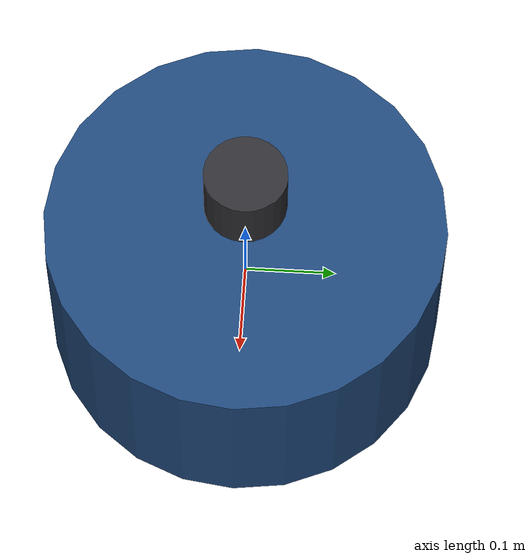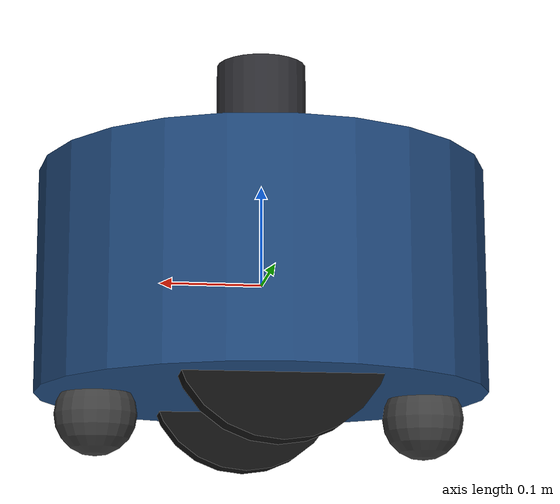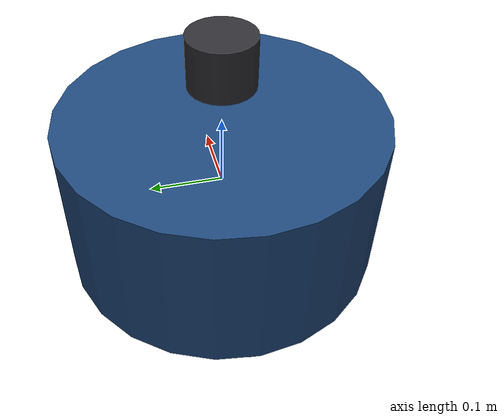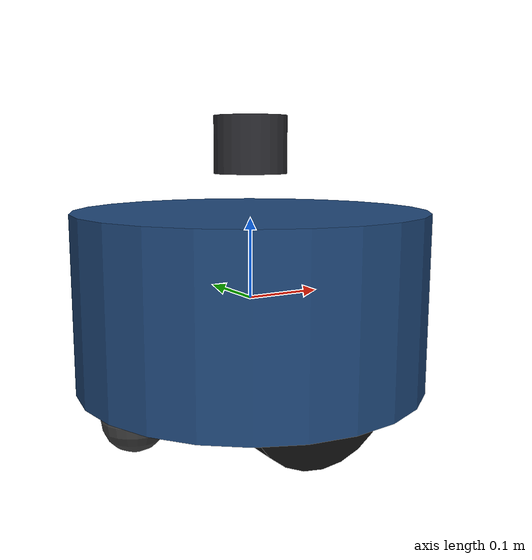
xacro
<?xml version="1.0"?>
<robot name="indoor_mobile_base" xmlns:xacro="http://www.ros.org/wiki/xacro">

  <link name="base_link">
    <inertial>
      <mass value="12.0"/><origin xyz="0 0 0"/>
      <inertia ixx="0.185" ixy="0" ixz="0" iyy="0.185" iyz="0" izz="0.290"/>
    </inertial>
    <visual><origin xyz="0 0 0"/><geometry><cylinder radius="0.22" length="0.22"/></geometry>
      <material name="body_blue"><color rgba="0.12 0.28 0.48 1"/></material></visual>
    <collision><geometry><cylinder radius="0.22" length="0.22"/></geometry></collision>
  </link>

  <link name="left_wheel_link">
    <inertial><mass value="0.6"/><inertia ixx="0.0015" ixy="0" ixz="0" iyy="0.003" iyz="0" izz="0.0015"/></inertial>
    <visual><origin rpy="1.57079632679 0 0"/><geometry><cylinder radius="0.10" length="0.04"/></geometry>
      <material name="rubber"><color rgba="0.06 0.06 0.06 1"/></material></visual>
    <collision><origin rpy="1.57079632679 0 0"/><geometry><cylinder radius="0.10" length="0.04"/></geometry></collision>
  </link>
  <joint name="left_wheel_joint" type="continuous">
    <parent link="base_link"/><child link="left_wheel_link"/><origin xyz="0 0.14 -0.07"/><axis xyz="0 1 0"/>
    <limit effort="8" velocity="4"/><dynamics damping="0.05" friction="0.02"/>
  </joint>

  <link name="right_wheel_link">
    <inertial><mass value="0.6"/><inertia ixx="0.0015" ixy="0" ixz="0" iyy="0.003" iyz="0" izz="0.0015"/></inertial>
    <visual><origin rpy="1.57079632679 0 0"/><geometry><cylinder radius="0.10" length="0.04"/></geometry>
      <material name="rubber"/></visual>
    <collision><origin rpy="1.57079632679 0 0"/><geometry><cylinder radius="0.10" length="0.04"/></geometry></collision>
  </link>
  <joint name="right_wheel_joint" type="continuous">
    <parent link="base_link"/><child link="right_wheel_link"/><origin xyz="0 -0.14 -0.07"/><axis xyz="0 1 0"/>
    <limit effort="8" velocity="4"/><dynamics damping="0.05" friction="0.02"/>
  </joint>

  <xacro:macro name="caster" params="side x">
    <link name="${side}_caster_link">
      <inertial><mass value="0.15"/><inertia ixx="0.0001" ixy="0" ixz="0" iyy="0.0001" iyz="0" izz="0.0001"/></inertial>
      <visual><geometry><sphere radius="0.04"/></geometry><material name="caster"><color rgba="0.25 0.25 0.25 1"/></material></visual>
      <collision><geometry><sphere radius="0.04"/></geometry></collision>
    </link>
    <joint name="${side}_caster_fixed_joint" type="fixed">
      <parent link="base_link"/><child link="${side}_caster_link"/><origin xyz="${x} 0 -0.13"/>
    </joint>
    <gazebo reference="${side}_caster_link"><mu1>0.05</mu1><mu2>0.05</mu2><kp>100000</kp><kd>1</kd></gazebo>
  </xacro:macro>
  <xacro:caster side="front" x="0.16"/>
  <xacro:caster side="rear" x="-0.16"/>

  <link name="imu_link">
    <inertial><mass value="0.02"/><inertia ixx="0.00001" ixy="0" ixz="0" iyy="0.00001" iyz="0" izz="0.00001"/></inertial>
    <visual><geometry><box size="0.04 0.04 0.02"/></geometry><material name="imu_case"><color rgba="0.2 0.8 0.2 1"/></material></visual>
  </link>
  <joint name="imu_mount_joint" type="fixed"><parent link="base_link"/><child link="imu_link"/><origin xyz="0 0 0.07"/></joint>

  <link name="livox_frame">
    <inertial><mass value="0.18"/><inertia ixx="0.00018" ixy="0" ixz="0" iyy="0.00018" iyz="0" izz="0.00018"/></inertial>
    <visual><geometry><cylinder radius="0.045" length="0.07"/></geometry><material name="lidar_case"><color rgba="0.18 0.18 0.20 1"/></material></visual>
    <collision><geometry><cylinder radius="0.045" length="0.07"/></geometry></collision>
  </link>
  <joint name="livox_mount_joint" type="fixed"><parent link="base_link"/><child link="livox_frame"/><origin xyz="0 0 0.19"/></joint>

  <gazebo reference="left_wheel_link"><mu1>1.2</mu1><mu2>1.2</mu2><kp>1000000</kp><kd>10</kd></gazebo>
  <gazebo reference="right_wheel_link"><mu1>1.2</mu1><mu2>1.2</mu2><kp>1000000</kp><kd>10</kd></gazebo>

  <gazebo reference="base_link">
    <sensor name="imu_sensor" type="imu">
      <pose>0 0 0.07 0 0 0</pose>
      <always_on>true</always_on><update_rate>200</update_rate><visualize>false</visualize>
      <imu>
        <angular_velocity>
          <x><noise type="gaussian"><mean>0</mean><stddev>0.0002</stddev></noise></x>
          <y><noise type="gaussian"><mean>0</mean><stddev>0.0002</stddev></noise></y>
          <z><noise type="gaussian"><mean>0</mean><stddev>0.0002</stddev></noise></z>
        </angular_velocity>
        <linear_acceleration>
          <x><noise type="gaussian"><mean>0</mean><stddev>0.002</stddev></noise></x>
          <y><noise type="gaussian"><mean>0</mean><stddev>0.002</stddev></noise></y>
          <z><noise type="gaussian"><mean>0</mean><stddev>0.002</stddev></noise></z>
        </linear_acceleration>
      </imu>
    </sensor>
  </gazebo>

  <gazebo reference="livox_frame">
    <sensor name="mid360" type="gpu_ray">
      <pose>0 0 0 0 0 0</pose><always_on>true</always_on><visualize>false</visualize><update_rate>10</update_rate>
      <ray>
        <scan><horizontal><samples>2048</samples><resolution>1</resolution><min_angle>-3.1415926535</min_angle><max_angle>3.1415926535</max_angle></horizontal>
          <vertical><samples>128</samples><resolution>1</resolution><min_angle>-0.126</min_angle><max_angle>0.965</max_angle></vertical></scan>
        <range><min>0.15</min><max>30.0</max><resolution>0.01</resolution></range>
      </ray>
      <plugin name="mid360_pattern" filename="libindoor_mid360_gpu_plugin.so">
        <ros><namespace>/</namespace></ros>
        <topic>/livox/lidar</topic><frame_id>livox_frame</frame_id>
        <csv_file_name>$(find indoor_slam_sim)/models/mid360.csv</csv_file_name>
        <samples>2000</samples><min_range>0.15</min_range><max_range>30.0</max_range>
      </plugin>
    </sensor>
  </gazebo>

  <gazebo>
    <plugin name="indoor_sim_imu" filename="libindoor_imu_plugin.so">
      <ros><namespace>/</namespace></ros>
      <link_name>base_link</link_name><frame_name>imu_link</frame_name><update_rate>200</update_rate>
    </plugin>
    <plugin name="diff_drive" filename="libgazebo_ros_diff_drive.so">
      <ros><namespace>/</namespace><remapping>cmd_vel:=/cmd_vel_limited</remapping><remapping>odom:=/wheel/odom</remapping></ros>
      <update_rate>100</update_rate><left_joint>left_wheel_joint</left_joint><right_joint>right_wheel_joint</right_joint>
      <wheel_separation>0.28</wheel_separation><wheel_diameter>0.20</wheel_diameter>
      <max_wheel_torque>8.0</max_wheel_torque><max_wheel_acceleration>4.0</max_wheel_acceleration>
      <command_topic>/cmd_vel_limited</command_topic><odometry_topic>/wheel/odom</odometry_topic>
      <odometry_frame>odom_wheel</odometry_frame><robot_base_frame>base_link</robot_base_frame>
      <publish_odom>true</publish_odom><publish_odom_tf>false</publish_odom_tf><publish_wheel_tf>false</publish_wheel_tf>
      <odometry_source>0</odometry_source>
    </plugin>
  </gazebo>
</robot>
